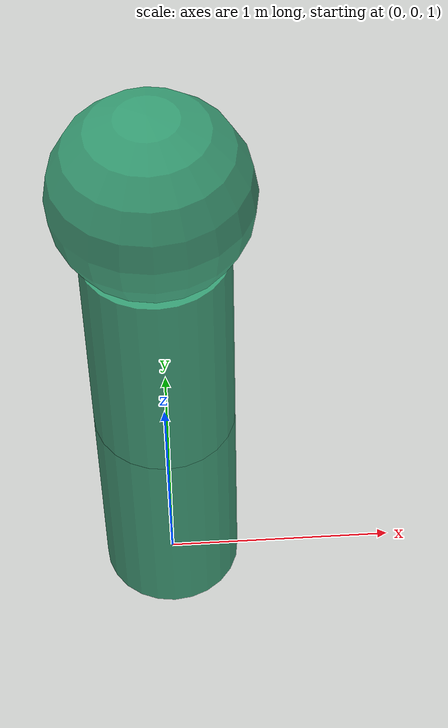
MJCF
<mujoco model="Pendulum">

    <!-- use degrees explicitly, instead of radians -->
    <compiler angle="degree"/>

    <default>
        <!-- default colors and attributs for geoms, joints -->
        <geom rgba=".1 .6 .4 0.8"/>
    </default>

    <asset>
        <!-- textures, etc, background -->
    </asset>

    <worldbody>
        <!-- light, kinda required -->
        <light pos="1 1 1" dir="0 -1 -1" diffuse="1 1 1"/>

        <!-- main section, contains bodies -->
        <body pos="0 0 1">

            <!-- to physically limit the range of the motor -->
            <joint name="pin" axis="1 0 0" limited="true" range="-180 180"/>

            <!-- primitive geometry (hitbox) -->
            <geom type="cylinder" size="0.3" fromto="0 0 0  0 0 1"/>

            <!-- child body, connected via actuator, joint, etc set in the child -->
            <body pos="0 0 1">

                <!-- limit its range either side, to simulate hitbox against its own body -->
                <joint axis="1 0 0" limited="true" range="-160 160"/>

                <!-- main geometry -->
                <geom type="cylinder" size="0.3" fromto="0 0 0  0 0 1"/>

                <!-- secondary geometry for the visual weight -->
                <geom type="sphere" size="0.4" pos="0 0 1.3"/>

            </body>

        </body>
    </worldbody>

    <!-- place all motors here, by referencing their names -->
    <actuator>

        <!-- actuator types are MOTOR, POSITION, VELOCITY, usually, use motor because torque output -->
        <motor joint="pin" ctrlrange="-1 1" gear="100"/>
        <!-- we use a normalized range even for spinning hinges, because otherwise, outputs get too high, and RL can't generalize -->
        <!-- but physically, it should be ctrlrange="0 0" default if not RL context -->

    </actuator>

</mujoco>
